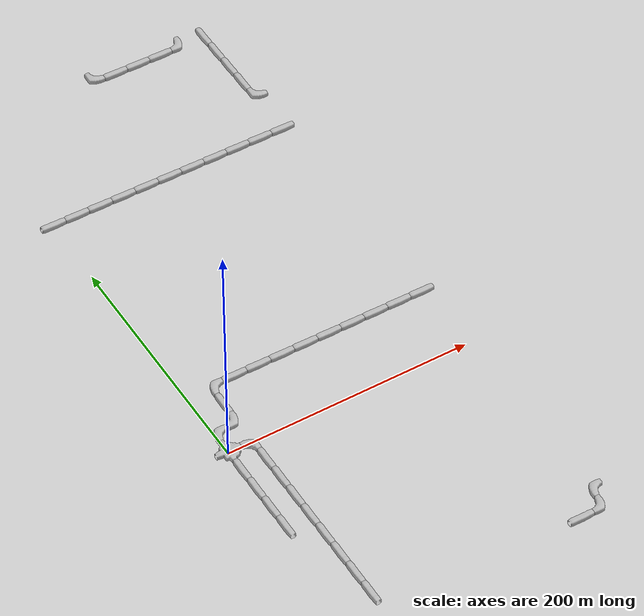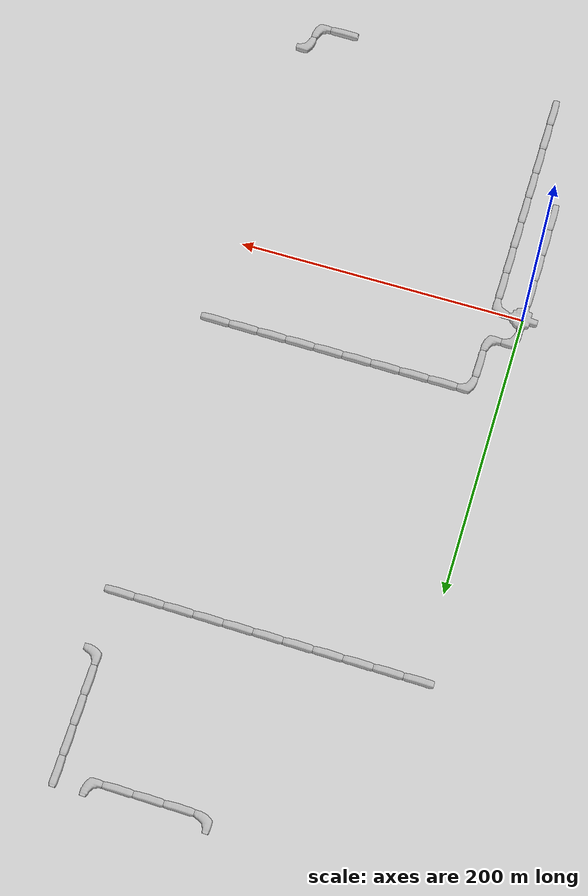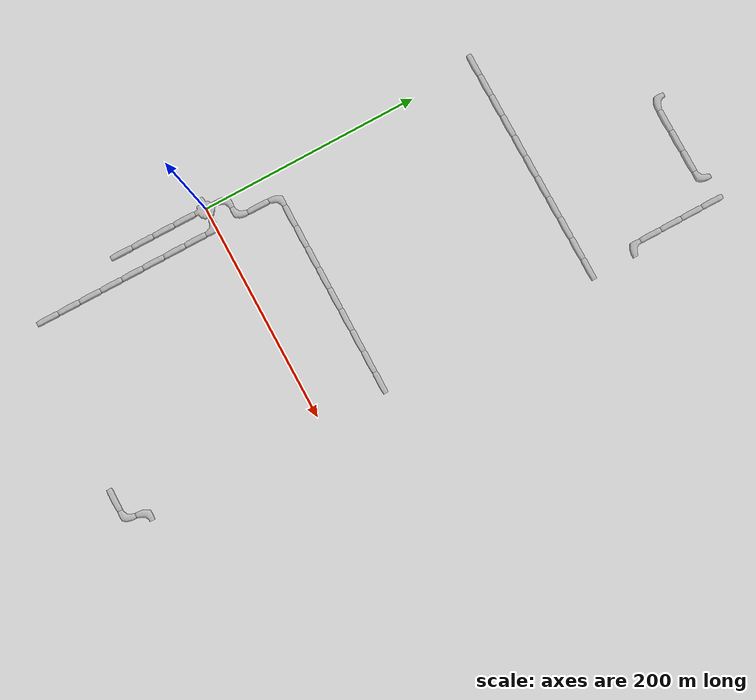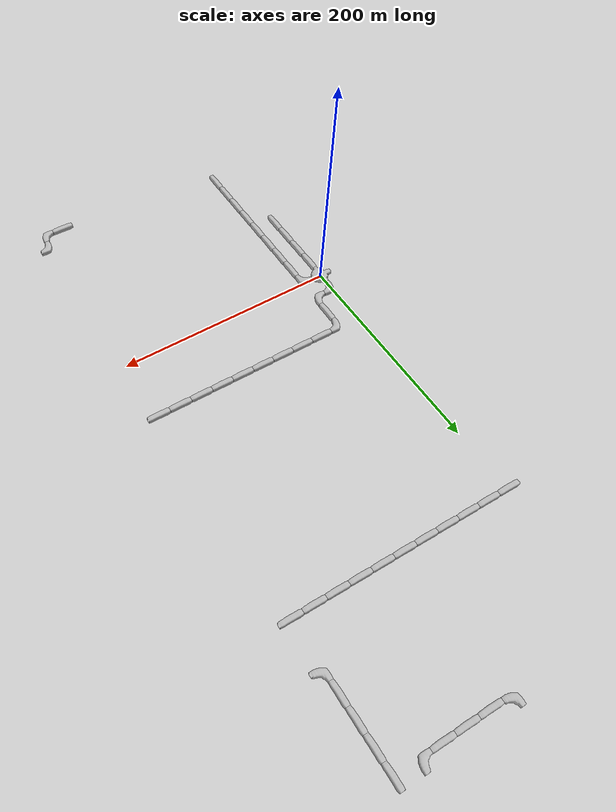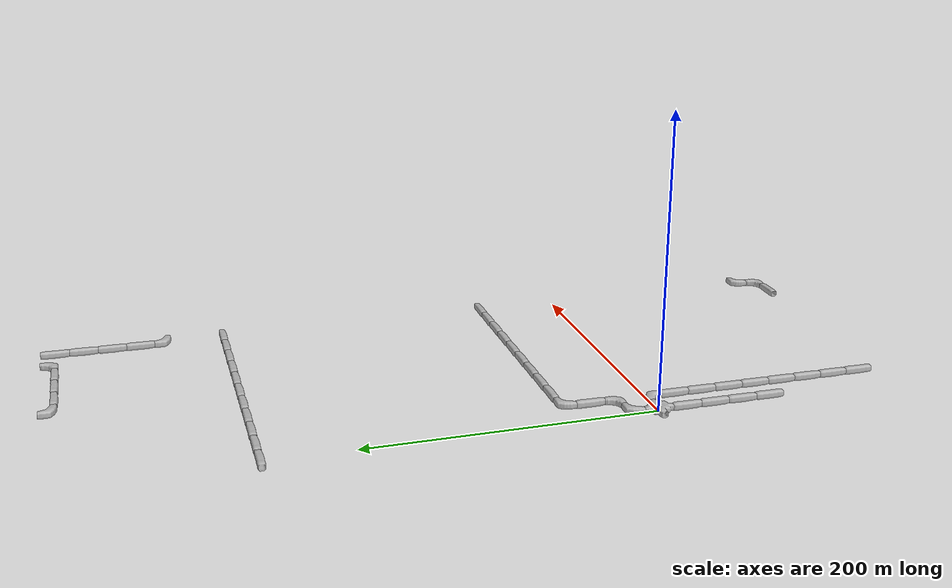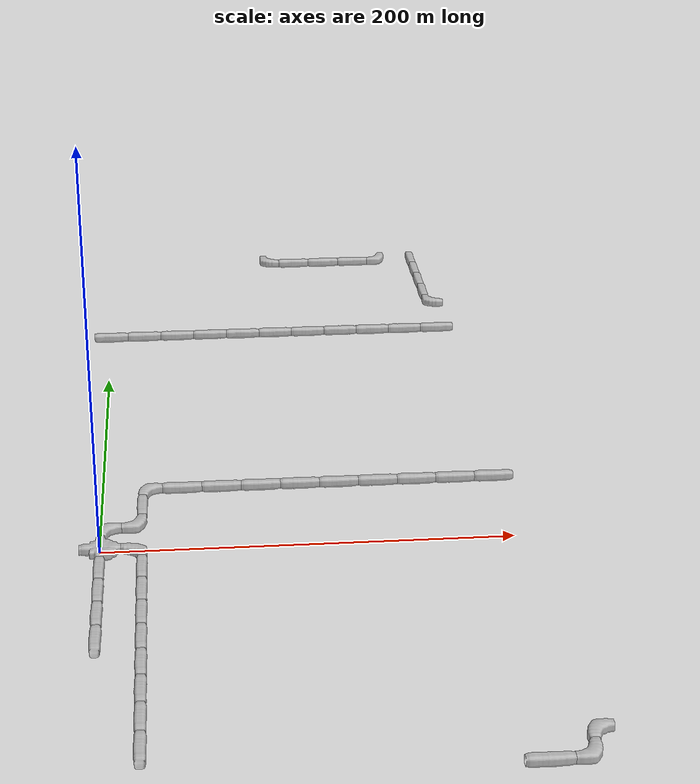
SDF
<sdf version="1.6">
 <world name="cave_16000_8">
  <include>
   <static>true</static>
   <name>cave_0_0</name>
   <pose>0 0 0 0 0 -1.5707963267948966</pose>
   <uri>model://cave_4way_20m</uri>
  </include>
  <include>
   <static>true</static>
   <name>cave_1_0</name>
   <pose>20 0 0 0 0 3.141592653589793</pose>
   <uri>model://cave_L_20m</uri>
  </include>
  <include>
   <static>true</static>
   <name>cave_1_-1</name>
   <pose>20 -20 0 0 0 0.0</pose>
   <uri>model://cave_straight_20m</uri>
  </include>
  <include>
   <static>true</static>
   <name>cave_1_-2</name>
   <pose>20 -40 0 0 0 0.0</pose>
   <uri>model://cave_straight_20m</uri>
  </include>
  <include>
   <static>true</static>
   <name>cave_1_-3</name>
   <pose>20 -60 0 0 0 0.0</pose>
   <uri>model://cave_straight_20m</uri>
  </include>
  <include>
   <static>true</static>
   <name>cave_1_-4</name>
   <pose>20 -80 0 0 0 0.0</pose>
   <uri>model://cave_straight_20m</uri>
  </include>
  <include>
   <static>true</static>
   <name>cave_1_-5</name>
   <pose>20 -100 0 0 0 0.0</pose>
   <uri>model://cave_straight_20m</uri>
  </include>
  <include>
   <static>true</static>
   <name>cave_1_-6</name>
   <pose>20 -120 0 0 0 0.0</pose>
   <uri>model://cave_straight_20m</uri>
  </include>
  <include>
   <static>true</static>
   <name>cave_1_-7</name>
   <pose>20 -140 0 0 0 0.0</pose>
   <uri>model://cave_straight_20m</uri>
  </include>
  <include>
   <static>true</static>
   <name>cave_1_-8</name>
   <pose>20 -160 0 0 0 0.0</pose>
   <uri>model://cave_straight_20m</uri>
  </include>
  <include>
   <static>true</static>
   <name>cave_10_-8</name>
   <pose>200 -160 0 0 0 -1.5707963267948966</pose>
   <uri>model://cave_L_20m</uri>
  </include>
  <include>
   <static>true</static>
   <name>cave_10_-9</name>
   <pose>200 -180 0 0 0 1.5707963267948966</pose>
   <uri>model://cave_L_20m</uri>
  </include>
  <include>
   <static>true</static>
   <name>cave_9_-9</name>
   <pose>180 -180 0 0 0 1.5707963267948966</pose>
   <uri>model://cave_straight_20m</uri>
  </include>
  <include>
   <static>true</static>
   <name>cave_0_-1</name>
   <pose>0 -20 0 0 0 0.0</pose>
   <uri>model://cave_straight_20m</uri>
  </include>
  <include>
   <static>true</static>
   <name>cave_0_-2</name>
   <pose>0 -40 0 0 0 0.0</pose>
   <uri>model://cave_straight_20m</uri>
  </include>
  <include>
   <static>true</static>
   <name>cave_0_-3</name>
   <pose>0 -60 0 0 0 0.0</pose>
   <uri>model://cave_straight_20m</uri>
  </include>
  <include>
   <static>true</static>
   <name>cave_0_-4</name>
   <pose>0 -80 0 0 0 0.0</pose>
   <uri>model://cave_straight_20m</uri>
  </include>
  <include>
   <static>true</static>
   <name>cave_0_13</name>
   <pose>0 260 0 0 0 1.5707963267948966</pose>
   <uri>model://cave_straight_20m</uri>
  </include>
  <include>
   <static>true</static>
   <name>cave_1_13</name>
   <pose>20 260 0 0 0 1.5707963267948966</pose>
   <uri>model://cave_straight_20m</uri>
  </include>
  <include>
   <static>true</static>
   <name>cave_2_13</name>
   <pose>40 260 0 0 0 1.5707963267948966</pose>
   <uri>model://cave_straight_20m</uri>
  </include>
  <include>
   <static>true</static>
   <name>cave_3_13</name>
   <pose>60 260 0 0 0 1.5707963267948966</pose>
   <uri>model://cave_straight_20m</uri>
  </include>
  <include>
   <static>true</static>
   <name>cave_4_13</name>
   <pose>80 260 0 0 0 1.5707963267948966</pose>
   <uri>model://cave_straight_20m</uri>
  </include>
  <include>
   <static>true</static>
   <name>cave_5_13</name>
   <pose>100 260 0 0 0 1.5707963267948966</pose>
   <uri>model://cave_straight_20m</uri>
  </include>
  <include>
   <static>true</static>
   <name>cave_6_13</name>
   <pose>120 260 0 0 0 1.5707963267948966</pose>
   <uri>model://cave_straight_20m</uri>
  </include>
  <include>
   <static>true</static>
   <name>cave_7_13</name>
   <pose>140 260 0 0 0 1.5707963267948966</pose>
   <uri>model://cave_straight_20m</uri>
  </include>
  <include>
   <static>true</static>
   <name>cave_8_13</name>
   <pose>160 260 0 0 0 1.5707963267948966</pose>
   <uri>model://cave_straight_20m</uri>
  </include>
  <include>
   <static>true</static>
   <name>cave_9_13</name>
   <pose>180 260 0 0 0 1.5707963267948966</pose>
   <uri>model://cave_straight_20m</uri>
  </include>
  <include>
   <static>true</static>
   <name>cave_10_13</name>
   <pose>200 260 0 0 0 1.5707963267948966</pose>
   <uri>model://cave_straight_20m</uri>
  </include>
  <include>
   <static>true</static>
   <name>cave_10_15</name>
   <pose>200 300 0 0 0 0.0</pose>
   <uri>model://cave_L_20m</uri>
  </include>
  <include>
   <static>true</static>
   <name>cave_10_16</name>
   <pose>200 320 0 0 0 0.0</pose>
   <uri>model://cave_straight_20m</uri>
  </include>
  <include>
   <static>true</static>
   <name>cave_10_17</name>
   <pose>200 340 0 0 0 0.0</pose>
   <uri>model://cave_straight_20m</uri>
  </include>
  <include>
   <static>true</static>
   <name>cave_10_18</name>
   <pose>200 360 0 0 0 0.0</pose>
   <uri>model://cave_straight_20m</uri>
  </include>
  <include>
   <static>true</static>
   <name>cave_10_19</name>
   <pose>200 380 0 0 0 0.0</pose>
   <uri>model://cave_straight_20m</uri>
  </include>
  <include>
   <static>true</static>
   <name>cave_9_19</name>
   <pose>180 380 0 0 0 1.5707963267948966</pose>
   <uri>model://cave_L_20m</uri>
  </include>
  <include>
   <static>true</static>
   <name>cave_8_19</name>
   <pose>160 380 0 0 0 1.5707963267948966</pose>
   <uri>model://cave_straight_20m</uri>
  </include>
  <include>
   <static>true</static>
   <name>cave_7_19</name>
   <pose>140 380 0 0 0 1.5707963267948966</pose>
   <uri>model://cave_straight_20m</uri>
  </include>
  <include>
   <static>true</static>
   <name>cave_6_19</name>
   <pose>120 380 0 0 0 1.5707963267948966</pose>
   <uri>model://cave_straight_20m</uri>
  </include>
  <include>
   <static>true</static>
   <name>cave_5_19</name>
   <pose>100 380 0 0 0 0.0</pose>
   <uri>model://cave_L_20m</uri>
  </include>
  <include>
   <static>true</static>
   <name>cave_0_1</name>
   <pose>0 20 0 0 0 -1.5707963267948966</pose>
   <uri>model://cave_L_20m</uri>
  </include>
  <include>
   <static>true</static>
   <name>cave_1_1</name>
   <pose>20 20 0 0 0 1.5707963267948966</pose>
   <uri>model://cave_L_20m</uri>
  </include>
  <include>
   <static>true</static>
   <name>cave_1_2</name>
   <pose>20 40 0 0 0 0.0</pose>
   <uri>model://cave_straight_20m</uri>
  </include>
  <include>
   <static>true</static>
   <name>cave_1_3</name>
   <pose>20 60 0 0 0 -1.5707963267948966</pose>
   <uri>model://cave_L_20m</uri>
  </include>
  <include>
   <static>true</static>
   <name>cave_2_3</name>
   <pose>40 60 0 0 0 1.5707963267948966</pose>
   <uri>model://cave_straight_20m</uri>
  </include>
  <include>
   <static>true</static>
   <name>cave_3_3</name>
   <pose>60 60 0 0 0 1.5707963267948966</pose>
   <uri>model://cave_straight_20m</uri>
  </include>
  <include>
   <static>true</static>
   <name>cave_4_3</name>
   <pose>80 60 0 0 0 1.5707963267948966</pose>
   <uri>model://cave_straight_20m</uri>
  </include>
  <include>
   <static>true</static>
   <name>cave_5_3</name>
   <pose>100 60 0 0 0 1.5707963267948966</pose>
   <uri>model://cave_straight_20m</uri>
  </include>
  <include>
   <static>true</static>
   <name>cave_6_3</name>
   <pose>120 60 0 0 0 1.5707963267948966</pose>
   <uri>model://cave_straight_20m</uri>
  </include>
  <include>
   <static>true</static>
   <name>cave_7_3</name>
   <pose>140 60 0 0 0 1.5707963267948966</pose>
   <uri>model://cave_straight_20m</uri>
  </include>
  <include>
   <static>true</static>
   <name>cave_8_3</name>
   <pose>160 60 0 0 0 1.5707963267948966</pose>
   <uri>model://cave_straight_20m</uri>
  </include>
  <include>
   <static>true</static>
   <name>cave_9_3</name>
   <pose>180 60 0 0 0 1.5707963267948966</pose>
   <uri>model://cave_straight_20m</uri>
  </include>
  <include>
   <static>true</static>
   <name>cave_10_3</name>
   <pose>200 60 0 0 0 1.5707963267948966</pose>
   <uri>model://cave_straight_20m</uri>
  </include>
 </world>
</sdf>
